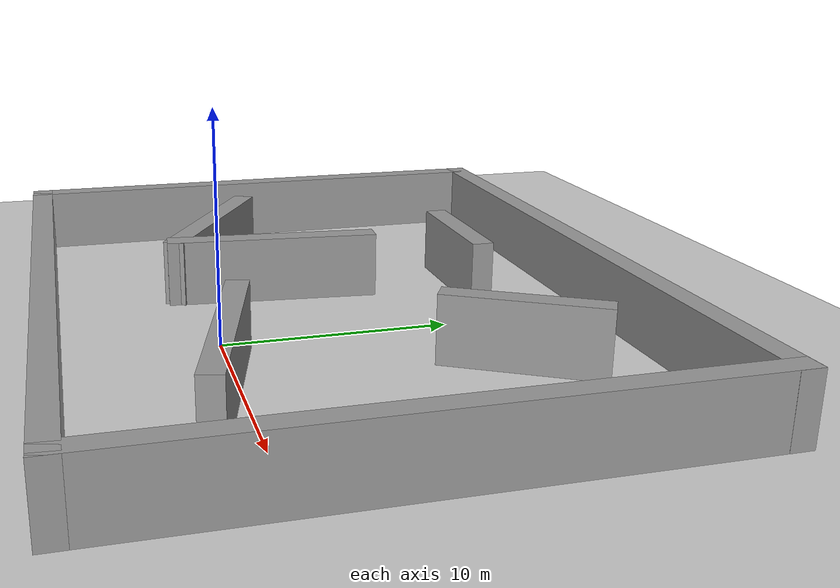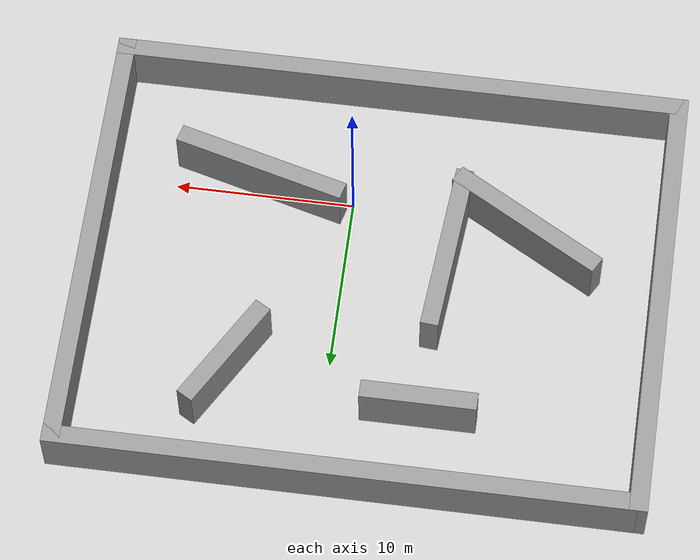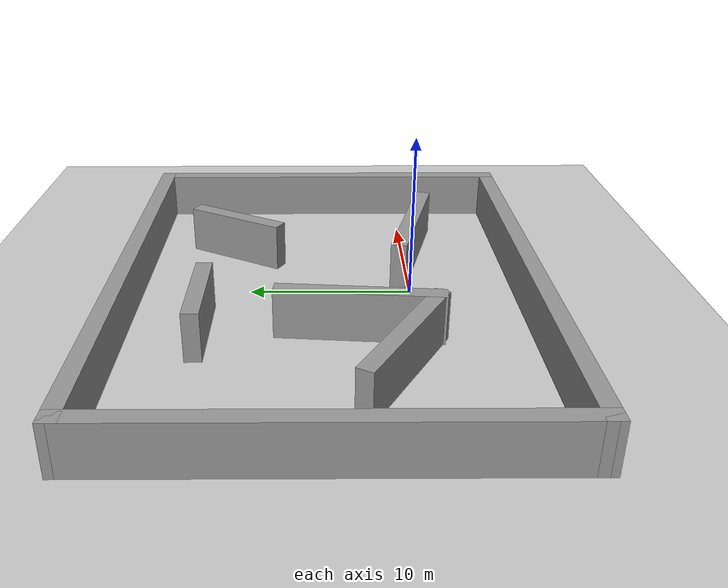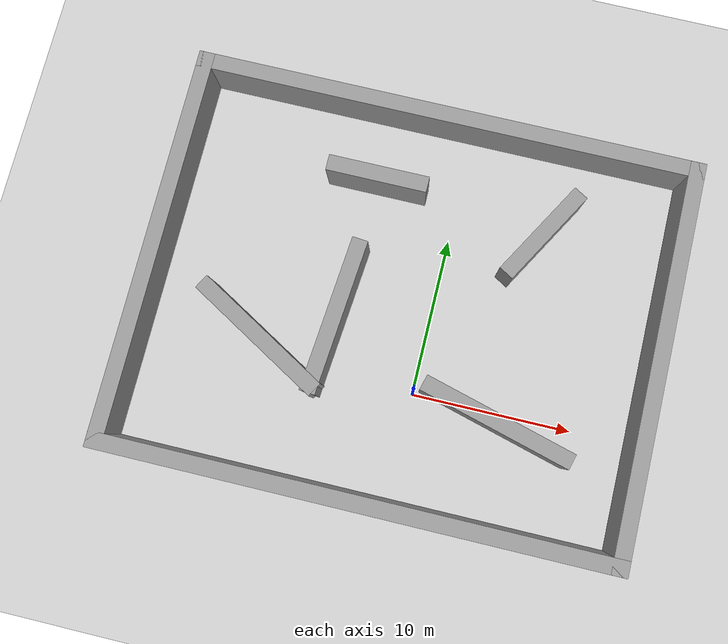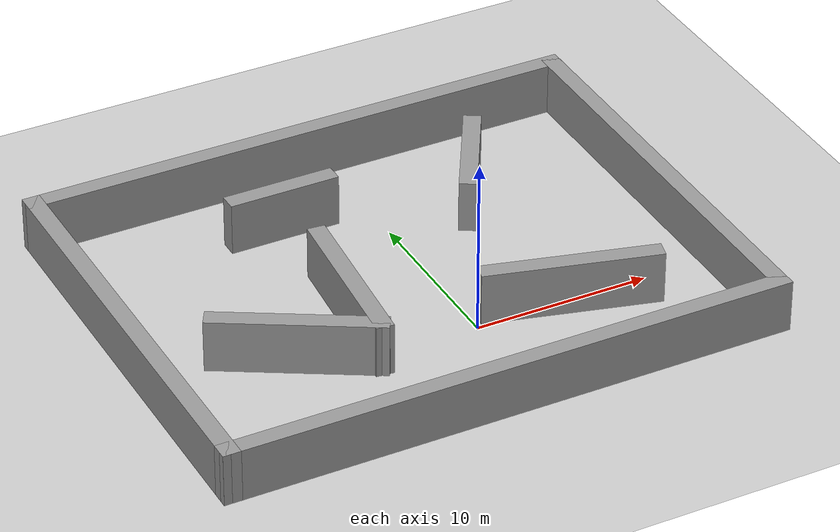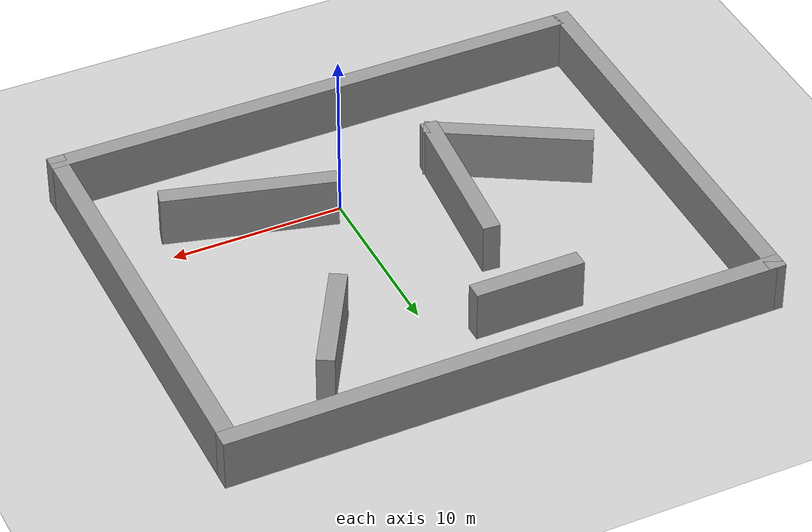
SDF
<sdf version="1.7">
 <world name="default">
  <light name="sun" type="directional">
   <pose>0 0 10 0 -0 0</pose>
   <diffuse>0.8 0.8 0.8 1</diffuse>
   <specular>0.2 0.2 0.2 1</specular>
   <attenuation>
    <range>1000</range>
    <constant>0.9</constant>
    <linear>0.01</linear>
    <quadratic>0.001</quadratic>
   </attenuation>
   <direction>-0.5 0.1 -0.9</direction>
   <spot><inner_angle>0</inner_angle><outer_angle>0</outer_angle><falloff>0</falloff></spot>
  </light>
  <model name="ground_plane">
   <static>1</static>
   <link name="link">
    <collision name="collision">
     <geometry><plane><normal>0 0 1</normal><size>100 100</size></plane></geometry>
     <surface>
      <contact><collide_bitmask>65535</collide_bitmask></contact>
      <friction><ode><mu>100</mu><mu2>50</mu2></ode></friction>
     </surface>
    </collision>
    <visual name="visual">
     <cast_shadows>0</cast_shadows>
     <geometry><plane><normal>0 0 1</normal><size>100 100</size></plane></geometry>
     <material>
      <script><uri>file://media/materials/scripts/gazebo.material</uri><name>Gazebo/Grey</name></script>
     </material>
    </visual>
   </link>
  </model>
  <gravity>0 0 -9.8</gravity>
  <magnetic_field>6e-06 2.3e-05 -4.2e-05</magnetic_field>
  <atmosphere type="adiabatic"/>
  <physics type="ode">
   <max_step_size>0.001</max_step_size>
   <real_time_factor>1</real_time_factor>
   <real_time_update_rate>1000</real_time_update_rate>
  </physics>
  <scene><ambient>0.4 0.4 0.4 1</ambient><background>0.7 0.7 0.7 1</background><shadows>1</shadows></scene>
  <spherical_coordinates>
   <surface_model>EARTH_WGS84</surface_model>
   <latitude_deg>0</latitude_deg>
   <longitude_deg>0</longitude_deg>
   <elevation>0</elevation>
   <heading_deg>0</heading_deg>
  </spherical_coordinates>
  <model name="Untitled">
   <pose>-1.79136 5.1275 0 0 -0 0</pose>
   <link name="Wall_11">
    <collision name="Wall_11_Collision">
     <geometry><box><size>9.85006 1 3</size></box></geometry>
     <pose>0 0 1.5 0 -0 0</pose>
    </collision>
    <visual name="Wall_11_Visual">
     <pose>0 0 1.5 0 -0 0</pose>
     <geometry><box><size>9.85006 1 3</size></box></geometry>
     <material>
      <script><uri>file://media/materials/scripts/gazebo.material</uri><name>Gazebo/Grey</name></script>
      <ambient>1 1 1 1</ambient>
     </material>
     <meta><layer>0</layer></meta>
    </visual>
    <pose>7.01386 -5.6735 0 0 -0 -0.261723</pose>
   </link>
   <link name="Wall_14">
    <collision name="Wall_14_Collision">
     <geometry><box><size>9.76695 1 3</size></box></geometry>
     <pose>0 0 1.5 0 -0 0</pose>
    </collision>
    <visual name="Wall_14_Visual">
     <pose>0 0 1.5 0 -0 0</pose>
     <geometry><box><size>9.76695 1 3</size></box></geometry>
     <material>
      <script><uri>file://media/materials/scripts/gazebo.material</uri><name>Gazebo/Grey</name></script>
      <ambient>1 1 1 1</ambient>
     </material>
     <meta><layer>0</layer></meta>
    </visual>
    <pose>-3.86621 -1.71045 0 0 -0 -1.66025</pose>
   </link>
   <link name="Wall_15">
    <collision name="Wall_15_Collision">
     <geometry><box><size>9.5 1 3</size></box></geometry>
     <pose>0 0 1.5 0 -0 0</pose>
    </collision>
    <visual name="Wall_15_Visual">
     <pose>0 0 1.5 0 -0 0</pose>
     <geometry><box><size>9.5 1 3</size></box></geometry>
     <material>
      <script><uri>file://media/materials/scripts/gazebo.material</uri><name>Gazebo/Grey</name></script>
      <ambient>1 1 1 1</ambient>
     </material>
     <meta><layer>0</layer></meta>
    </visual>
    <pose>-8.00858 -3.9514 0 0 -0 2.61799</pose>
   </link>
   <link name="Wall_2">
    <collision name="Wall_2_Collision">
     <geometry><box><size>32.3504 1 3</size></box></geometry>
     <pose>0 0 1.5 0 -0 0</pose>
    </collision>
    <visual name="Wall_2_Visual">
     <pose>0 0 1.5 0 -0 0</pose>
     <geometry><box><size>32.3504 1 3</size></box></geometry>
     <material>
      <script><uri>file://media/materials/scripts/gazebo.material</uri><name>Gazebo/Grey</name></script>
      <ambient>1 1 1 1</ambient>
     </material>
     <meta><layer>0</layer></meta>
    </visual>
    <pose>-0.039639 -12.1345 0 0 -0 0</pose>
   </link>
   <link name="Wall_3">
    <collision name="Wall_3_Collision">
     <geometry><box><size>25.2591 0.99 3</size></box></geometry>
     <pose>0 0 1.5 0 -0 0</pose>
    </collision>
    <visual name="Wall_3_Visual">
     <pose>0 0 1.5 0 -0 0</pose>
     <geometry><box><size>25.2591 0.99 3</size></box></geometry>
     <material>
      <script><uri>file://media/materials/scripts/gazebo.material</uri><name>Gazebo/Grey</name></script>
      <ambient>1 1 1 1</ambient>
     </material>
     <meta><layer>0</layer></meta>
    </visual>
    <pose>15.6759 0 0 0 -0 1.56746</pose>
   </link>
   <link name="Wall_4">
    <collision name="Wall_4_Collision">
     <geometry><box><size>32.3499 1 3</size></box></geometry>
     <pose>0 0 1.5 0 -0 0</pose>
    </collision>
    <visual name="Wall_4_Visual">
     <pose>0 0 1.5 0 -0 0</pose>
     <geometry><box><size>32.3499 1 3</size></box></geometry>
     <material>
      <script><uri>file://media/materials/scripts/gazebo.material</uri><name>Gazebo/Grey</name></script>
      <ambient>1 1 1 1</ambient>
     </material>
     <meta><layer>0</layer></meta>
    </visual>
    <pose>0.041361 12.1345 0 0 -0 3.14159</pose>
   </link>
   <link name="Wall_5">
    <collision name="Wall_5_Collision">
     <geometry><box><size>25.2695 1 3</size></box></geometry>
     <pose>0 0 1.5 0 -0 0</pose>
    </collision>
    <visual name="Wall_5_Visual">
     <pose>0 0 1.5 0 -0 0</pose>
     <geometry><box><size>25.2695 1 3</size></box></geometry>
     <material>
      <script><uri>file://media/materials/scripts/gazebo.material</uri><name>Gazebo/Grey</name></script>
      <ambient>1 1 1 1</ambient>
     </material>
     <meta><layer>0</layer></meta>
    </visual>
    <pose>-15.6741 0 0 0 -0 -1.57413</pose>
   </link>
   <link name="Wall_7">
    <collision name="Wall_7_Collision">
     <geometry><box><size>6.34985 1 3</size></box></geometry>
     <pose>0 0 1.5 0 -0 0</pose>
    </collision>
    <visual name="Wall_7_Visual">
     <pose>0 0 1.5 0 -0 0</pose>
     <geometry><box><size>6.34985 1 3</size></box></geometry>
     <material>
      <script><uri>file://media/materials/scripts/gazebo.material</uri><name>Gazebo/Grey</name></script>
      <ambient>1 1 1 1</ambient>
     </material>
     <meta><layer>0</layer></meta>
    </visual>
    <pose>-3.38264 7.4165 0 0 -0 0</pose>
   </link>
   <link name="Wall_9">
    <collision name="Wall_9_Collision">
     <geometry><box><size>6.84972 1 3</size></box></geometry>
     <pose>0 0 1.5 0 -0 0</pose>
    </collision>
    <visual name="Wall_9_Visual">
     <pose>0 0 1.5 0 -0 0</pose>
     <geometry><box><size>6.84972 1 3</size></box></geometry>
     <material>
      <script><uri>file://media/materials/scripts/gazebo.material</uri><name>Gazebo/Grey</name></script>
      <ambient>1 1 1 1</ambient>
     </material>
     <meta><layer>0</layer></meta>
    </visual>
    <pose>7.32986 6.0945 0 0 -0 -2.09442</pose>
   </link>
   <static>1</static>
  </model>
 </world>
</sdf>
